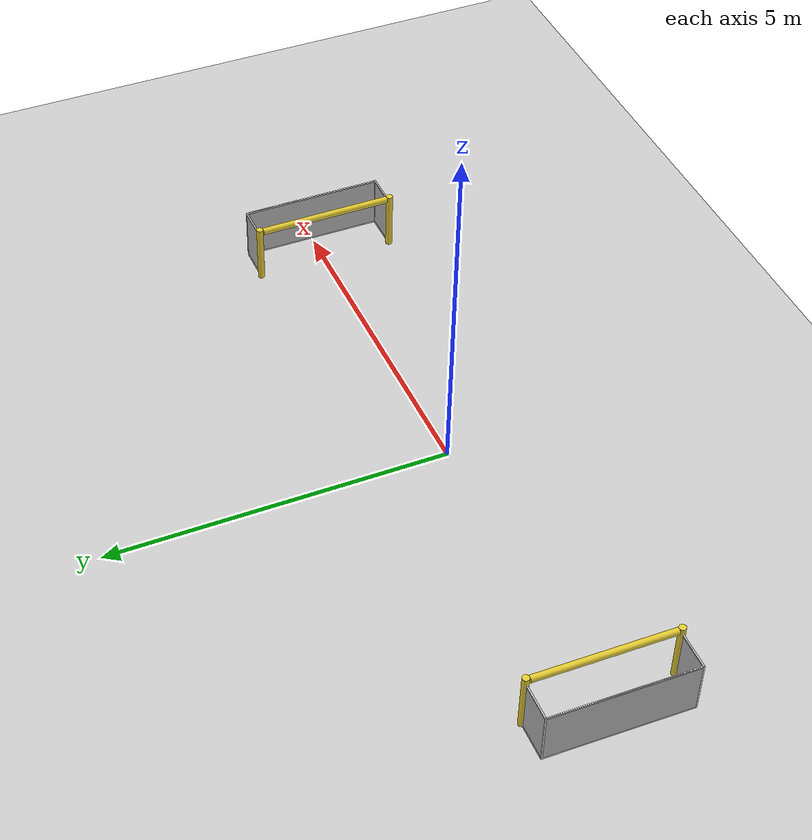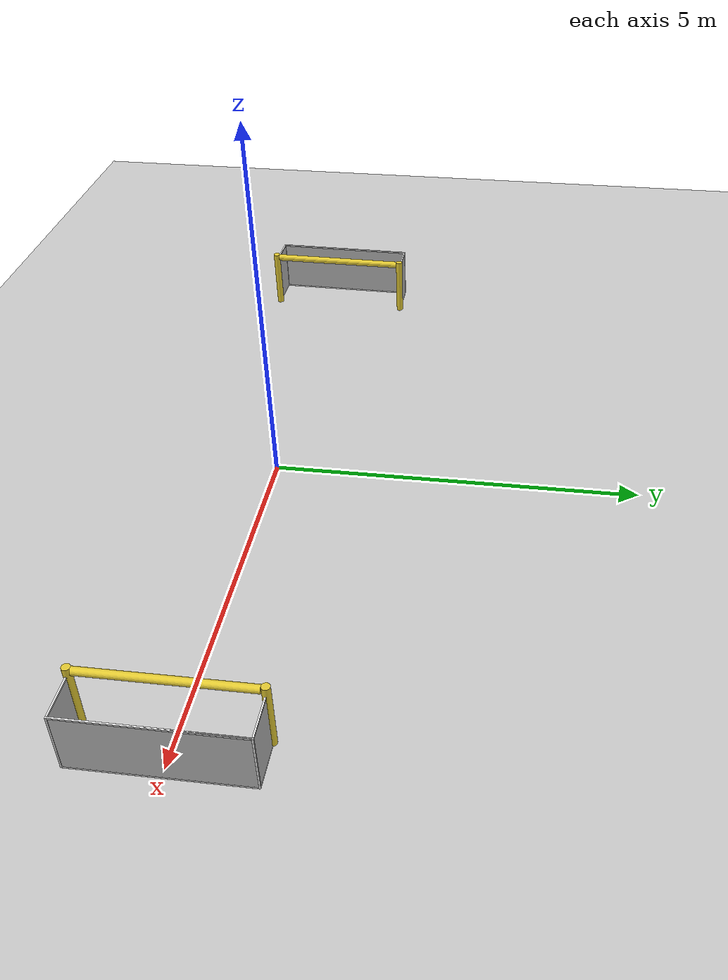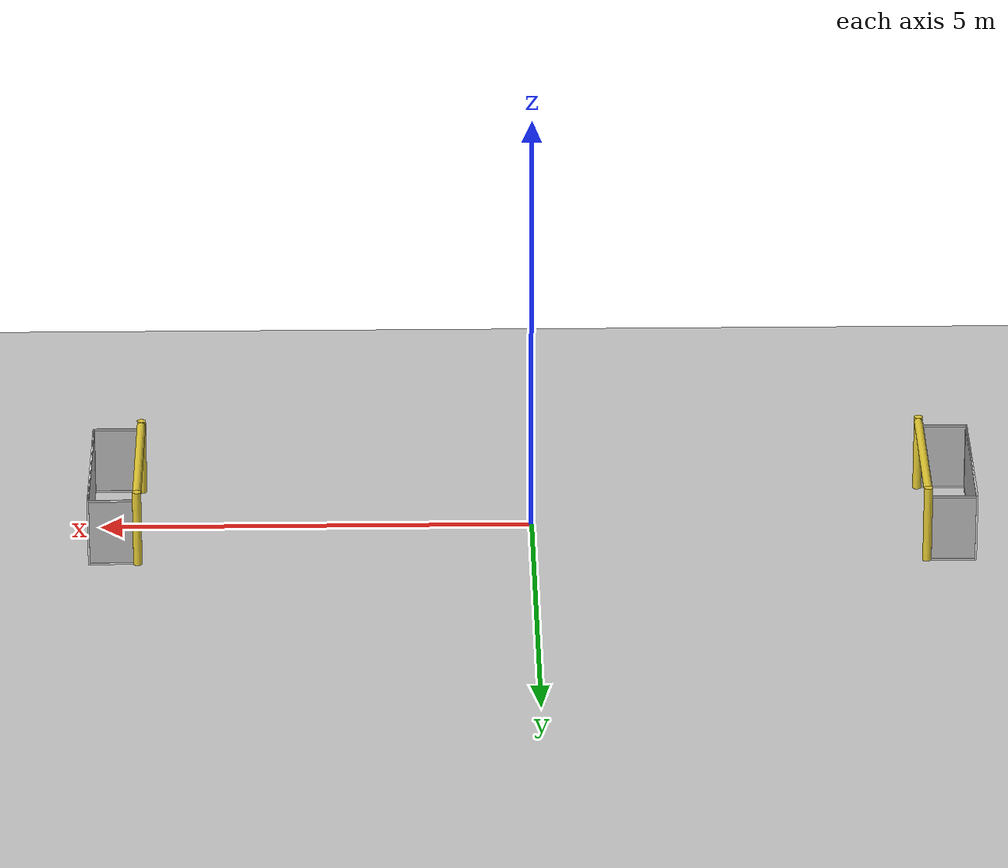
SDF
<sdf version="1.6">
 <world name="default">
  <light name="sun" type="directional">
   <pose>0 0 10 0 -0 0</pose>
   <diffuse>0.8 0.8 0.8 1</diffuse>
   <specular>0.1 0.1 0.1 1</specular>
   <attenuation>
    <range>1000</range>
    <constant>0.9</constant>
    <linear>0.01</linear>
    <quadratic>0.001</quadratic>
   </attenuation>
   <direction>-0.5 0.5 -1</direction>
  </light>
  <model name="ground_plane">
   <static>1</static>
   <link name="link">
    <collision name="collision">
     <geometry><plane><normal>0 0 1</normal><size>100 100</size></plane></geometry>
     <surface>
      <friction>
       <ode>
        <mu>500000.000000</mu>
        <mu2>500000.000000</mu2>
        <fdir1>1.000000 1.000000 1.000000</fdir1>
        <slip1>0.000000</slip1>
        <slip2>0.000000</slip2>
       </ode>
      </friction>
      <bounce>
       <restitution_coefficient>0.000000</restitution_coefficient>
       <threshold>100000.000000</threshold>
      </bounce>
      <contact>
       <ode>
        <soft_cfm>0.000000</soft_cfm>
        <soft_erp>0.200000</soft_erp>
        <kp>1000000000.000000</kp>
        <kd>1.000000</kd>
        <max_vel>5.000000</max_vel>
        <min_depth>0.001000</min_depth>
       </ode>
      </contact>
     </surface>
    </collision>
    <visual name="visual">
     <cast_shadows>0</cast_shadows>
     <geometry><plane><normal>0 0 1</normal><size>100 100</size></plane></geometry>
     <material>
      <script><uri>file://media/materials/scripts/gazebo.material</uri><name>Gazebo/Grey</name></script>
     </material>
    </visual>
   </link>
  </model>
  <gravity>0 0 -9.8</gravity>
  <magnetic_field>6e-06 2.3e-05 -4.2e-05</magnetic_field>
  <atmosphere type="adiabatic"/>
  <physics name="default_physics" default="0" type="ode">
   <max_step_size>0.001</max_step_size>
   <real_time_factor>1</real_time_factor>
   <real_time_update_rate>1000</real_time_update_rate>
  </physics>
  <scene><ambient>0.4 0.4 0.4 1</ambient><background>0.7 0.7 0.7 1</background><shadows>1</shadows></scene>
  <spherical_coordinates>
   <surface_model>EARTH_WGS84</surface_model>
   <latitude_deg>0</latitude_deg>
   <longitude_deg>0</longitude_deg>
   <elevation>0</elevation>
   <heading_deg>0</heading_deg>
  </spherical_coordinates>
  <model name="robocup_3d_goal">
   <static>1</static>
   <link name="left_post">
    <pose>0 1.05 0.45 0 -0 0</pose>
    <collision name="collision">
     <geometry><cylinder><radius>0.05</radius><length>0.9</length></cylinder></geometry>
    </collision>
    <visual name="visual">
     <geometry><cylinder><radius>0.05</radius><length>0.9</length></cylinder></geometry>
     <material>
      <script><uri>file://media/materials/scripts/gazebo.material</uri><name>Gazebo/ZincYellow</name></script>
     </material>
    </visual>
   </link>
   <link name="left_support_horiz_lower">
    <pose>0.3 1.05 0.01 0 -0 0</pose>
    <collision name="collision"><geometry><box><size>0.5 0.02 0.02</size></box></geometry></collision>
    <visual name="visual">
     <geometry><box><size>0.5 0.02 0.02</size></box></geometry>
     <material>
      <script><uri>file://media/materials/scripts/gazebo.material</uri><name>Gazebo/White</name></script>
     </material>
    </visual>
   </link>
   <link name="left_support_horiz_upper">
    <pose>0.3 1.05 0.79 0 -0 0</pose>
    <collision name="collision"><geometry><box><size>0.5 0.02 0.02</size></box></geometry></collision>
    <visual name="visual">
     <geometry><box><size>0.5 0.02 0.02</size></box></geometry>
     <material>
      <script><uri>file://media/materials/scripts/gazebo.material</uri><name>Gazebo/White</name></script>
     </material>
    </visual>
   </link>
   <link name="left_support_vertical">
    <pose>0.56 1.05 0.4 3.14159 1.57079 3.14159</pose>
    <collision name="collision"><geometry><box><size>0.8 0.02 0.02</size></box></geometry></collision>
    <visual name="visual">
     <geometry><box><size>0.8 0.02 0.02</size></box></geometry>
     <material>
      <script><uri>file://media/materials/scripts/gazebo.material</uri><name>Gazebo/White</name></script>
     </material>
    </visual>
   </link>
   <link name="right_support_horiz_lower">
    <pose>0.3 -1.05 0.01 0 -0 0</pose>
    <collision name="collision"><geometry><box><size>0.5 0.02 0.02</size></box></geometry></collision>
    <visual name="visual">
     <geometry><box><size>0.5 0.02 0.02</size></box></geometry>
     <material>
      <script><uri>file://media/materials/scripts/gazebo.material</uri><name>Gazebo/White</name></script>
     </material>
    </visual>
   </link>
   <link name="right_support_horiz_upper">
    <pose>0.3 -1.05 0.79 0 -0 0</pose>
    <collision name="collision"><geometry><box><size>0.5 0.02 0.02</size></box></geometry></collision>
    <visual name="visual">
     <geometry><box><size>0.5 0.02 0.02</size></box></geometry>
     <material>
      <script><uri>file://media/materials/scripts/gazebo.material</uri><name>Gazebo/White</name></script>
     </material>
    </visual>
   </link>
   <link name="right_support_vertical">
    <pose>0.56 -1.05 0.4 3.14159 1.57079 3.14159</pose>
    <collision name="collision"><geometry><box><size>0.8 0.02 0.02</size></box></geometry></collision>
    <visual name="visual">
     <geometry><box><size>0.8 0.02 0.02</size></box></geometry>
     <material>
      <script><uri>file://media/materials/scripts/gazebo.material</uri><name>Gazebo/White</name></script>
     </material>
    </visual>
   </link>
   <link name="center_support_horiz_lower">
    <pose>0.56 0 0.01 3.14159 1.57079 3.14159</pose>
    <collision name="collision"><geometry><box><size>0.02 2.08 0.02</size></box></geometry></collision>
    <visual name="visual">
     <geometry><box><size>0.02 2.08 0.02</size></box></geometry>
     <material>
      <script><uri>file://media/materials/scripts/gazebo.material</uri><name>Gazebo/White</name></script>
     </material>
    </visual>
   </link>
   <link name="center_support_horiz_upper">
    <pose>0.56 0 0.79 3.14159 1.57079 3.14159</pose>
    <collision name="collision"><geometry><box><size>0.02 2.08 0.02</size></box></geometry></collision>
    <visual name="visual">
     <geometry><box><size>0.02 2.08 0.02</size></box></geometry>
     <material>
      <script><uri>file://media/materials/scripts/gazebo.material</uri><name>Gazebo/White</name></script>
     </material>
    </visual>
   </link>
   <link name="right_post">
    <pose>0 -1.05 0.45 0 -0 0</pose>
    <collision name="collision">
     <geometry><cylinder><radius>0.05</radius><length>0.9</length></cylinder></geometry>
    </collision>
    <visual name="visual">
     <geometry><cylinder><radius>0.05</radius><length>0.9</length></cylinder></geometry>
     <material>
      <script><uri>file://media/materials/scripts/gazebo.material</uri><name>Gazebo/ZincYellow</name></script>
     </material>
    </visual>
   </link>
   <link name="crossbar">
    <pose>0 0 0.85 1.57 1.57 0</pose>
    <collision name="collision">
     <geometry><cylinder><radius>0.05</radius><length>2</length></cylinder></geometry>
    </collision>
    <visual name="visual">
     <geometry><cylinder><radius>0.05</radius><length>2</length></cylinder></geometry>
     <material>
      <script><uri>file://media/materials/scripts/gazebo.material</uri><name>Gazebo/ZincYellow</name></script>
     </material>
    </visual>
   </link>
   <link name="center_net">
    <pose>0.56 0 0.4 0 -0 0</pose>
    <collision name="collision"><geometry><box><size>0.01 2.1 0.8</size></box></geometry></collision>
    <visual name="visual">
     <geometry><box><size>0.01 2.1 0.8</size></box></geometry>
     <material>
      <script>
       <uri>model://robocup09_spl_field/materials/scripts/</uri>
       <uri>model://robocup09_spl_field/materials/textures/</uri>
       <name>RoboCup/Net</name>
      </script>
     </material>
    </visual>
   </link>
   <link name="left_net">
    <pose>0.3 1.05 0.4 0 -0 0</pose>
    <collision name="collision"><geometry><box><size>0.5 0.01 0.76</size></box></geometry></collision>
    <visual name="visual">
     <geometry><box><size>0.5 0.01 0.76</size></box></geometry>
     <material>
      <script>
       <uri>model://robocup09_spl_field/materials/scripts/</uri>
       <uri>model://robocup09_spl_field/materials/textures/</uri>
       <name>RoboCup/Net</name>
      </script>
     </material>
    </visual>
   </link>
   <link name="right_net">
    <pose>0.3 -1.05 0.4 0 -0 0</pose>
    <collision name="collision"><geometry><box><size>0.5 0.01 0.76</size></box></geometry></collision>
    <visual name="visual">
     <geometry><box><size>0.5 0.01 0.76</size></box></geometry>
     <material>
      <script>
       <uri>model://robocup09_spl_field/materials/scripts/</uri>
       <uri>model://robocup09_spl_field/materials/textures/</uri>
       <name>RoboCup/Net</name>
      </script>
     </material>
    </visual>
   </link>
   <pose>4.54218 -0.012564 0 0 -0 0</pose>
  </model>
  <model name="robocup_3d_goal_0">
   <static>1</static>
   <link name="left_post">
    <pose>0 1.05 0.45 0 -0 0</pose>
    <collision name="collision">
     <geometry><cylinder><radius>0.05</radius><length>0.9</length></cylinder></geometry>
    </collision>
    <visual name="visual">
     <geometry><cylinder><radius>0.05</radius><length>0.9</length></cylinder></geometry>
     <material>
      <script><uri>file://media/materials/scripts/gazebo.material</uri><name>Gazebo/ZincYellow</name></script>
     </material>
    </visual>
   </link>
   <link name="left_support_horiz_lower">
    <pose>0.3 1.05 0.01 0 -0 0</pose>
    <collision name="collision"><geometry><box><size>0.5 0.02 0.02</size></box></geometry></collision>
    <visual name="visual">
     <geometry><box><size>0.5 0.02 0.02</size></box></geometry>
     <material>
      <script><uri>file://media/materials/scripts/gazebo.material</uri><name>Gazebo/White</name></script>
     </material>
    </visual>
   </link>
   <link name="left_support_horiz_upper">
    <pose>0.3 1.05 0.79 0 -0 0</pose>
    <collision name="collision"><geometry><box><size>0.5 0.02 0.02</size></box></geometry></collision>
    <visual name="visual">
     <geometry><box><size>0.5 0.02 0.02</size></box></geometry>
     <material>
      <script><uri>file://media/materials/scripts/gazebo.material</uri><name>Gazebo/White</name></script>
     </material>
    </visual>
   </link>
   <link name="left_support_vertical">
    <pose>0.56 1.05 0.4 3.14159 1.57079 3.14159</pose>
    <collision name="collision"><geometry><box><size>0.8 0.02 0.02</size></box></geometry></collision>
    <visual name="visual">
     <geometry><box><size>0.8 0.02 0.02</size></box></geometry>
     <material>
      <script><uri>file://media/materials/scripts/gazebo.material</uri><name>Gazebo/White</name></script>
     </material>
    </visual>
   </link>
   <link name="right_support_horiz_lower">
    <pose>0.3 -1.05 0.01 0 -0 0</pose>
    <collision name="collision"><geometry><box><size>0.5 0.02 0.02</size></box></geometry></collision>
    <visual name="visual">
     <geometry><box><size>0.5 0.02 0.02</size></box></geometry>
     <material>
      <script><uri>file://media/materials/scripts/gazebo.material</uri><name>Gazebo/White</name></script>
     </material>
    </visual>
   </link>
   <link name="right_support_horiz_upper">
    <pose>0.3 -1.05 0.79 0 -0 0</pose>
    <collision name="collision"><geometry><box><size>0.5 0.02 0.02</size></box></geometry></collision>
    <visual name="visual">
     <geometry><box><size>0.5 0.02 0.02</size></box></geometry>
     <material>
      <script><uri>file://media/materials/scripts/gazebo.material</uri><name>Gazebo/White</name></script>
     </material>
    </visual>
   </link>
   <link name="right_support_vertical">
    <pose>0.56 -1.05 0.4 3.14159 1.57079 3.14159</pose>
    <collision name="collision"><geometry><box><size>0.8 0.02 0.02</size></box></geometry></collision>
    <visual name="visual">
     <geometry><box><size>0.8 0.02 0.02</size></box></geometry>
     <material>
      <script><uri>file://media/materials/scripts/gazebo.material</uri><name>Gazebo/White</name></script>
     </material>
    </visual>
   </link>
   <link name="center_support_horiz_lower">
    <pose>0.56 0 0.01 3.14159 1.57079 3.14159</pose>
    <collision name="collision"><geometry><box><size>0.02 2.08 0.02</size></box></geometry></collision>
    <visual name="visual">
     <geometry><box><size>0.02 2.08 0.02</size></box></geometry>
     <material>
      <script><uri>file://media/materials/scripts/gazebo.material</uri><name>Gazebo/White</name></script>
     </material>
    </visual>
   </link>
   <link name="center_support_horiz_upper">
    <pose>0.56 0 0.79 3.14159 1.57079 3.14159</pose>
    <collision name="collision"><geometry><box><size>0.02 2.08 0.02</size></box></geometry></collision>
    <visual name="visual">
     <geometry><box><size>0.02 2.08 0.02</size></box></geometry>
     <material>
      <script><uri>file://media/materials/scripts/gazebo.material</uri><name>Gazebo/White</name></script>
     </material>
    </visual>
   </link>
   <link name="right_post">
    <pose>0 -1.05 0.45 0 -0 0</pose>
    <collision name="collision">
     <geometry><cylinder><radius>0.05</radius><length>0.9</length></cylinder></geometry>
    </collision>
    <visual name="visual">
     <geometry><cylinder><radius>0.05</radius><length>0.9</length></cylinder></geometry>
     <material>
      <script><uri>file://media/materials/scripts/gazebo.material</uri><name>Gazebo/ZincYellow</name></script>
     </material>
    </visual>
   </link>
   <link name="crossbar">
    <pose>0 0 0.85 1.57 1.57 0</pose>
    <collision name="collision">
     <geometry><cylinder><radius>0.05</radius><length>2</length></cylinder></geometry>
    </collision>
    <visual name="visual">
     <geometry><cylinder><radius>0.05</radius><length>2</length></cylinder></geometry>
     <material>
      <script><uri>file://media/materials/scripts/gazebo.material</uri><name>Gazebo/ZincYellow</name></script>
     </material>
    </visual>
   </link>
   <link name="center_net">
    <pose>0.56 0 0.4 0 -0 0</pose>
    <collision name="collision"><geometry><box><size>0.01 2.1 0.8</size></box></geometry></collision>
    <visual name="visual">
     <geometry><box><size>0.01 2.1 0.8</size></box></geometry>
     <material>
      <script>
       <uri>model://robocup09_spl_field/materials/scripts/</uri>
       <uri>model://robocup09_spl_field/materials/textures/</uri>
       <name>RoboCup/Net</name>
      </script>
     </material>
    </visual>
   </link>
   <link name="left_net">
    <pose>0.3 1.05 0.4 0 -0 0</pose>
    <collision name="collision"><geometry><box><size>0.5 0.01 0.76</size></box></geometry></collision>
    <visual name="visual">
     <geometry><box><size>0.5 0.01 0.76</size></box></geometry>
     <material>
      <script>
       <uri>model://robocup09_spl_field/materials/scripts/</uri>
       <uri>model://robocup09_spl_field/materials/textures/</uri>
       <name>RoboCup/Net</name>
      </script>
     </material>
    </visual>
   </link>
   <link name="right_net">
    <pose>0.3 -1.05 0.4 0 -0 0</pose>
    <collision name="collision"><geometry><box><size>0.5 0.01 0.76</size></box></geometry></collision>
    <visual name="visual">
     <geometry><box><size>0.5 0.01 0.76</size></box></geometry>
     <material>
      <script>
       <uri>model://robocup09_spl_field/materials/scripts/</uri>
       <uri>model://robocup09_spl_field/materials/textures/</uri>
       <name>RoboCup/Net</name>
      </script>
     </material>
    </visual>
   </link>
   <pose>-4.54432 0.026775 0 0 -0 3.1254</pose>
  </model>
 </world>
</sdf>
